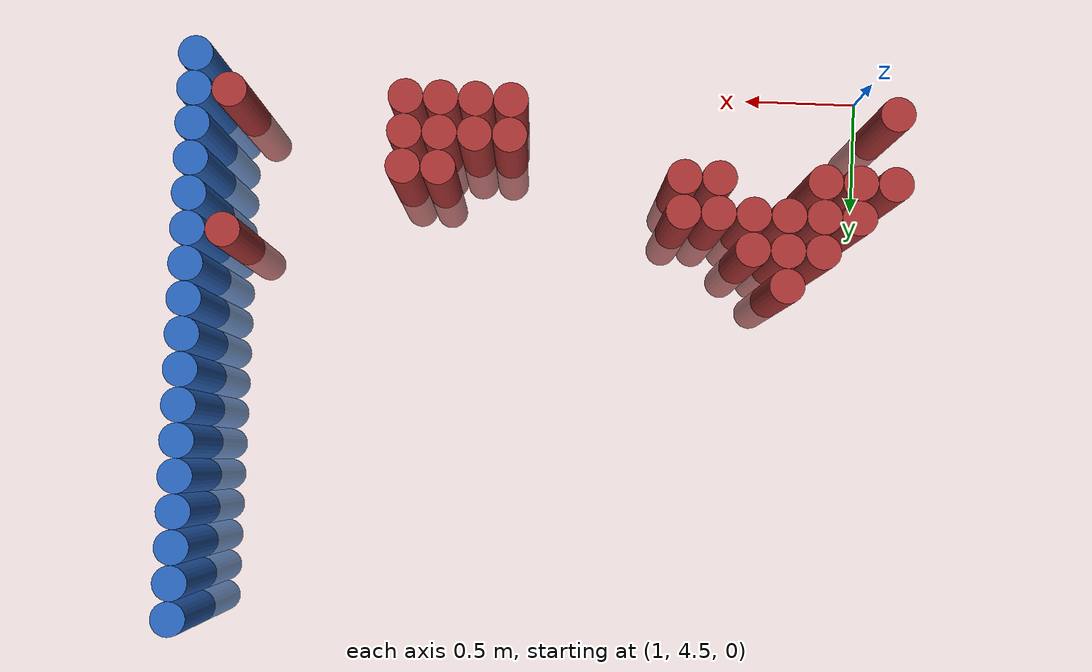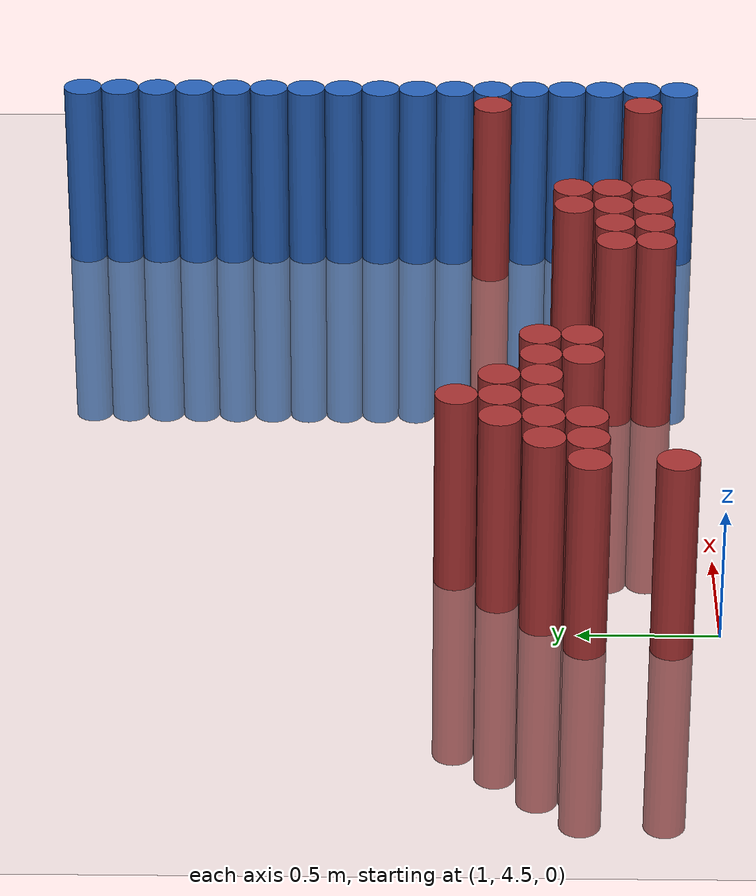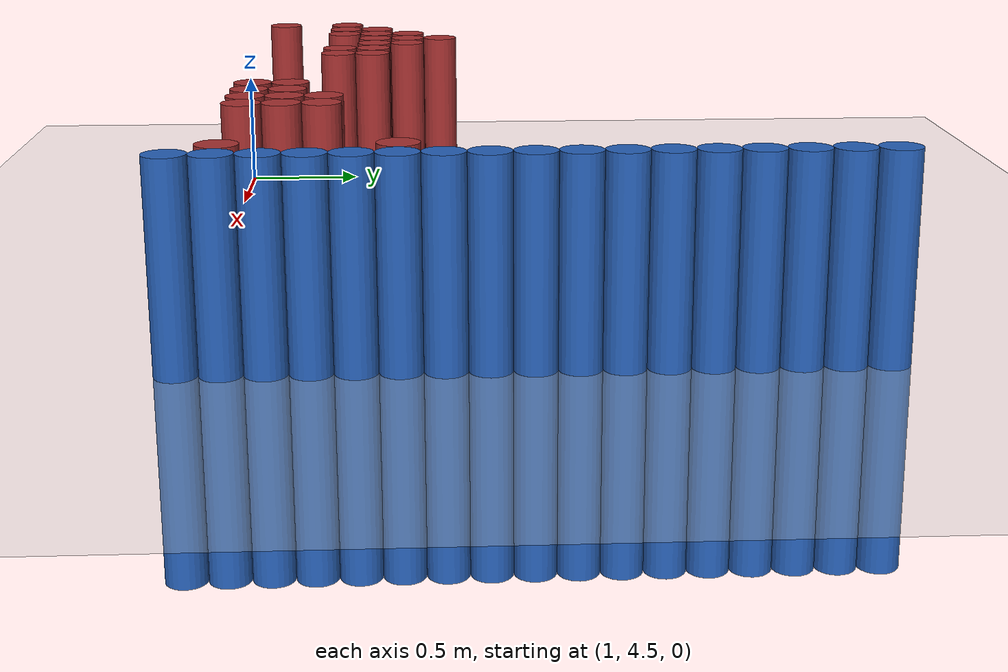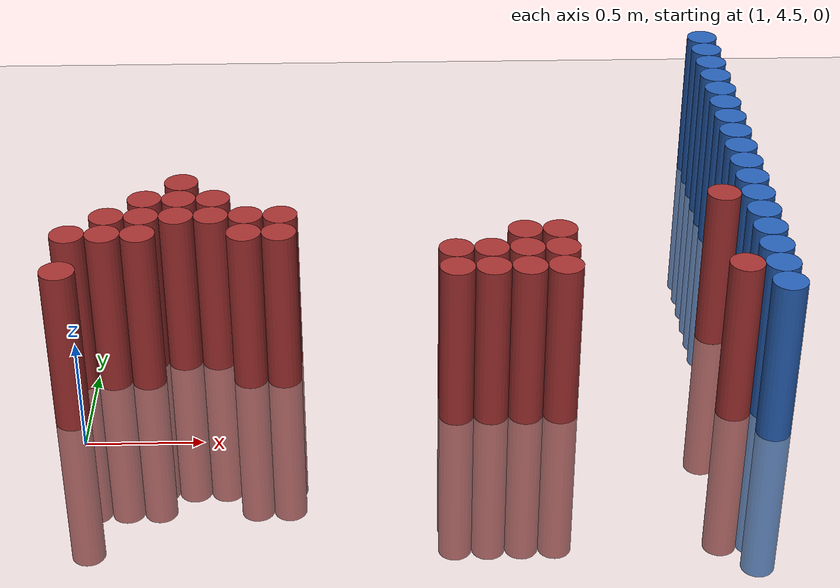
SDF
<sdf version="1.6">
 <world name="default">
  <model name="ground_plane">
   <static>1</static>
   <link name="link">
    <collision name="collision">
     <geometry><plane><normal>0 0 1</normal><size>100 100</size></plane></geometry>
     <surface><friction><ode><mu>100</mu><mu2>50</mu2></ode></friction></surface>
    </collision>
    <visual name="visual">
     <cast_shadows>0</cast_shadows>
     <geometry><plane><normal>0 0 1</normal><size>100 100</size></plane></geometry>
     <material>
      <script><uri>file://media/materials/scripts/gazebo.material</uri><name>Gazebo/Grey</name></script>
     </material>
    </visual>
   </link>
  </model>
  <model name="unit_cylinder_174">
   <static>1</static>
   <pose>3.925000 4.525000 0.000000 0.000000 0.000000 0.000000</pose>
   <link name="link">
    <inertial>
     <mass>1</mass>
     <inertia><ixx>0.145833</ixx><ixy>0</ixy><ixz>0</ixz><iyy>0.145833</iyy><iyz>0</iyz><izz>0.125</izz></inertia>
    </inertial>
    <collision name="collision">
     <geometry><cylinder><radius>0.075000</radius><length>1.5</length></cylinder></geometry>
    </collision>
    <visual name="visual">
     <geometry><cylinder><radius>0.075000</radius><length>1.5</length></cylinder></geometry>
     <material>
      <ambient>0.152000 0.379000 0.720000 1</ambient>
      <diffuse>0.152000 0.379000 0.720000 1</diffuse>
     </material>
     <material>
      <script><name>Gazebo/Grey</name><uri>file://media/materials/scripts/gazebo.material</uri></script>
     </material>
    </visual>
   </link>
  </model>
  <model name="unit_cylinder_176">
   <static>1</static>
   <pose>3.925000 4.675000 0.000000 0.000000 0.000000 0.000000</pose>
   <link name="link">
    <inertial>
     <mass>1</mass>
     <inertia><ixx>0.145833</ixx><ixy>0</ixy><ixz>0</ixz><iyy>0.145833</iyy><iyz>0</iyz><izz>0.125</izz></inertia>
    </inertial>
    <collision name="collision">
     <geometry><cylinder><radius>0.075000</radius><length>1.5</length></cylinder></geometry>
    </collision>
    <visual name="visual">
     <geometry><cylinder><radius>0.075000</radius><length>1.5</length></cylinder></geometry>
     <material>
      <ambient>0.152000 0.379000 0.720000 1</ambient>
      <diffuse>0.152000 0.379000 0.720000 1</diffuse>
     </material>
     <material>
      <script><name>Gazebo/Grey</name><uri>file://media/materials/scripts/gazebo.material</uri></script>
     </material>
    </visual>
   </link>
  </model>
  <model name="unit_cylinder_178">
   <static>1</static>
   <pose>3.925000 4.825000 0.000000 0.000000 0.000000 0.000000</pose>
   <link name="link">
    <inertial>
     <mass>1</mass>
     <inertia><ixx>0.145833</ixx><ixy>0</ixy><ixz>0</ixz><iyy>0.145833</iyy><iyz>0</iyz><izz>0.125</izz></inertia>
    </inertial>
    <collision name="collision">
     <geometry><cylinder><radius>0.075000</radius><length>1.5</length></cylinder></geometry>
    </collision>
    <visual name="visual">
     <geometry><cylinder><radius>0.075000</radius><length>1.5</length></cylinder></geometry>
     <material>
      <ambient>0.152000 0.379000 0.720000 1</ambient>
      <diffuse>0.152000 0.379000 0.720000 1</diffuse>
     </material>
     <material>
      <script><name>Gazebo/Grey</name><uri>file://media/materials/scripts/gazebo.material</uri></script>
     </material>
    </visual>
   </link>
  </model>
  <model name="unit_cylinder_180">
   <static>1</static>
   <pose>3.925000 4.975000 0.000000 0.000000 0.000000 0.000000</pose>
   <link name="link">
    <inertial>
     <mass>1</mass>
     <inertia><ixx>0.145833</ixx><ixy>0</ixy><ixz>0</ixz><iyy>0.145833</iyy><iyz>0</iyz><izz>0.125</izz></inertia>
    </inertial>
    <collision name="collision">
     <geometry><cylinder><radius>0.075000</radius><length>1.5</length></cylinder></geometry>
    </collision>
    <visual name="visual">
     <geometry><cylinder><radius>0.075000</radius><length>1.5</length></cylinder></geometry>
     <material>
      <ambient>0.152000 0.379000 0.720000 1</ambient>
      <diffuse>0.152000 0.379000 0.720000 1</diffuse>
     </material>
     <material>
      <script><name>Gazebo/Grey</name><uri>file://media/materials/scripts/gazebo.material</uri></script>
     </material>
    </visual>
   </link>
  </model>
  <model name="unit_cylinder_182">
   <static>1</static>
   <pose>3.925000 5.125000 0.000000 0.000000 0.000000 0.000000</pose>
   <link name="link">
    <inertial>
     <mass>1</mass>
     <inertia><ixx>0.145833</ixx><ixy>0</ixy><ixz>0</ixz><iyy>0.145833</iyy><iyz>0</iyz><izz>0.125</izz></inertia>
    </inertial>
    <collision name="collision">
     <geometry><cylinder><radius>0.075000</radius><length>1.5</length></cylinder></geometry>
    </collision>
    <visual name="visual">
     <geometry><cylinder><radius>0.075000</radius><length>1.5</length></cylinder></geometry>
     <material>
      <ambient>0.152000 0.379000 0.720000 1</ambient>
      <diffuse>0.152000 0.379000 0.720000 1</diffuse>
     </material>
     <material>
      <script><name>Gazebo/Grey</name><uri>file://media/materials/scripts/gazebo.material</uri></script>
     </material>
    </visual>
   </link>
  </model>
  <model name="unit_cylinder_184">
   <static>1</static>
   <pose>3.925000 5.275000 0.000000 0.000000 0.000000 0.000000</pose>
   <link name="link">
    <inertial>
     <mass>1</mass>
     <inertia><ixx>0.145833</ixx><ixy>0</ixy><ixz>0</ixz><iyy>0.145833</iyy><iyz>0</iyz><izz>0.125</izz></inertia>
    </inertial>
    <collision name="collision">
     <geometry><cylinder><radius>0.075000</radius><length>1.5</length></cylinder></geometry>
    </collision>
    <visual name="visual">
     <geometry><cylinder><radius>0.075000</radius><length>1.5</length></cylinder></geometry>
     <material>
      <ambient>0.152000 0.379000 0.720000 1</ambient>
      <diffuse>0.152000 0.379000 0.720000 1</diffuse>
     </material>
     <material>
      <script><name>Gazebo/Grey</name><uri>file://media/materials/scripts/gazebo.material</uri></script>
     </material>
    </visual>
   </link>
  </model>
  <model name="unit_cylinder_186">
   <static>1</static>
   <pose>3.925000 5.425000 0.000000 0.000000 0.000000 0.000000</pose>
   <link name="link">
    <inertial>
     <mass>1</mass>
     <inertia><ixx>0.145833</ixx><ixy>0</ixy><ixz>0</ixz><iyy>0.145833</iyy><iyz>0</iyz><izz>0.125</izz></inertia>
    </inertial>
    <collision name="collision">
     <geometry><cylinder><radius>0.075000</radius><length>1.5</length></cylinder></geometry>
    </collision>
    <visual name="visual">
     <geometry><cylinder><radius>0.075000</radius><length>1.5</length></cylinder></geometry>
     <material>
      <ambient>0.152000 0.379000 0.720000 1</ambient>
      <diffuse>0.152000 0.379000 0.720000 1</diffuse>
     </material>
     <material>
      <script><name>Gazebo/Grey</name><uri>file://media/materials/scripts/gazebo.material</uri></script>
     </material>
    </visual>
   </link>
  </model>
  <model name="unit_cylinder_188">
   <static>1</static>
   <pose>3.925000 5.575000 0.000000 0.000000 0.000000 0.000000</pose>
   <link name="link">
    <inertial>
     <mass>1</mass>
     <inertia><ixx>0.145833</ixx><ixy>0</ixy><ixz>0</ixz><iyy>0.145833</iyy><iyz>0</iyz><izz>0.125</izz></inertia>
    </inertial>
    <collision name="collision">
     <geometry><cylinder><radius>0.075000</radius><length>1.5</length></cylinder></geometry>
    </collision>
    <visual name="visual">
     <geometry><cylinder><radius>0.075000</radius><length>1.5</length></cylinder></geometry>
     <material>
      <ambient>0.152000 0.379000 0.720000 1</ambient>
      <diffuse>0.152000 0.379000 0.720000 1</diffuse>
     </material>
     <material>
      <script><name>Gazebo/Grey</name><uri>file://media/materials/scripts/gazebo.material</uri></script>
     </material>
    </visual>
   </link>
  </model>
  <model name="unit_cylinder_190">
   <static>1</static>
   <pose>3.925000 5.725000 0.000000 0.000000 0.000000 0.000000</pose>
   <link name="link">
    <inertial>
     <mass>1</mass>
     <inertia><ixx>0.145833</ixx><ixy>0</ixy><ixz>0</ixz><iyy>0.145833</iyy><iyz>0</iyz><izz>0.125</izz></inertia>
    </inertial>
    <collision name="collision">
     <geometry><cylinder><radius>0.075000</radius><length>1.5</length></cylinder></geometry>
    </collision>
    <visual name="visual">
     <geometry><cylinder><radius>0.075000</radius><length>1.5</length></cylinder></geometry>
     <material>
      <ambient>0.152000 0.379000 0.720000 1</ambient>
      <diffuse>0.152000 0.379000 0.720000 1</diffuse>
     </material>
     <material>
      <script><name>Gazebo/Grey</name><uri>file://media/materials/scripts/gazebo.material</uri></script>
     </material>
    </visual>
   </link>
  </model>
  <model name="unit_cylinder_192">
   <static>1</static>
   <pose>3.925000 5.875000 0.000000 0.000000 0.000000 0.000000</pose>
   <link name="link">
    <inertial>
     <mass>1</mass>
     <inertia><ixx>0.145833</ixx><ixy>0</ixy><ixz>0</ixz><iyy>0.145833</iyy><iyz>0</iyz><izz>0.125</izz></inertia>
    </inertial>
    <collision name="collision">
     <geometry><cylinder><radius>0.075000</radius><length>1.5</length></cylinder></geometry>
    </collision>
    <visual name="visual">
     <geometry><cylinder><radius>0.075000</radius><length>1.5</length></cylinder></geometry>
     <material>
      <ambient>0.152000 0.379000 0.720000 1</ambient>
      <diffuse>0.152000 0.379000 0.720000 1</diffuse>
     </material>
     <material>
      <script><name>Gazebo/Grey</name><uri>file://media/materials/scripts/gazebo.material</uri></script>
     </material>
    </visual>
   </link>
  </model>
  <model name="unit_cylinder_194">
   <static>1</static>
   <pose>3.925000 6.025000 0.000000 0.000000 0.000000 0.000000</pose>
   <link name="link">
    <inertial>
     <mass>1</mass>
     <inertia><ixx>0.145833</ixx><ixy>0</ixy><ixz>0</ixz><iyy>0.145833</iyy><iyz>0</iyz><izz>0.125</izz></inertia>
    </inertial>
    <collision name="collision">
     <geometry><cylinder><radius>0.075000</radius><length>1.5</length></cylinder></geometry>
    </collision>
    <visual name="visual">
     <geometry><cylinder><radius>0.075000</radius><length>1.5</length></cylinder></geometry>
     <material>
      <ambient>0.152000 0.379000 0.720000 1</ambient>
      <diffuse>0.152000 0.379000 0.720000 1</diffuse>
     </material>
     <material>
      <script><name>Gazebo/Grey</name><uri>file://media/materials/scripts/gazebo.material</uri></script>
     </material>
    </visual>
   </link>
  </model>
  <model name="unit_cylinder_196">
   <static>1</static>
   <pose>3.925000 6.175000 0.000000 0.000000 0.000000 0.000000</pose>
   <link name="link">
    <inertial>
     <mass>1</mass>
     <inertia><ixx>0.145833</ixx><ixy>0</ixy><ixz>0</ixz><iyy>0.145833</iyy><iyz>0</iyz><izz>0.125</izz></inertia>
    </inertial>
    <collision name="collision">
     <geometry><cylinder><radius>0.075000</radius><length>1.5</length></cylinder></geometry>
    </collision>
    <visual name="visual">
     <geometry><cylinder><radius>0.075000</radius><length>1.5</length></cylinder></geometry>
     <material>
      <ambient>0.152000 0.379000 0.720000 1</ambient>
      <diffuse>0.152000 0.379000 0.720000 1</diffuse>
     </material>
     <material>
      <script><name>Gazebo/Grey</name><uri>file://media/materials/scripts/gazebo.material</uri></script>
     </material>
    </visual>
   </link>
  </model>
  <model name="unit_cylinder_198">
   <static>1</static>
   <pose>3.925000 6.325000 0.000000 0.000000 0.000000 0.000000</pose>
   <link name="link">
    <inertial>
     <mass>1</mass>
     <inertia><ixx>0.145833</ixx><ixy>0</ixy><ixz>0</ixz><iyy>0.145833</iyy><iyz>0</iyz><izz>0.125</izz></inertia>
    </inertial>
    <collision name="collision">
     <geometry><cylinder><radius>0.075000</radius><length>1.5</length></cylinder></geometry>
    </collision>
    <visual name="visual">
     <geometry><cylinder><radius>0.075000</radius><length>1.5</length></cylinder></geometry>
     <material>
      <ambient>0.152000 0.379000 0.720000 1</ambient>
      <diffuse>0.152000 0.379000 0.720000 1</diffuse>
     </material>
     <material>
      <script><name>Gazebo/Grey</name><uri>file://media/materials/scripts/gazebo.material</uri></script>
     </material>
    </visual>
   </link>
  </model>
  <model name="unit_cylinder_200">
   <static>1</static>
   <pose>3.925000 6.475000 0.000000 0.000000 0.000000 0.000000</pose>
   <link name="link">
    <inertial>
     <mass>1</mass>
     <inertia><ixx>0.145833</ixx><ixy>0</ixy><ixz>0</ixz><iyy>0.145833</iyy><iyz>0</iyz><izz>0.125</izz></inertia>
    </inertial>
    <collision name="collision">
     <geometry><cylinder><radius>0.075000</radius><length>1.5</length></cylinder></geometry>
    </collision>
    <visual name="visual">
     <geometry><cylinder><radius>0.075000</radius><length>1.5</length></cylinder></geometry>
     <material>
      <ambient>0.152000 0.379000 0.720000 1</ambient>
      <diffuse>0.152000 0.379000 0.720000 1</diffuse>
     </material>
     <material>
      <script><name>Gazebo/Grey</name><uri>file://media/materials/scripts/gazebo.material</uri></script>
     </material>
    </visual>
   </link>
  </model>
  <model name="unit_cylinder_202">
   <static>1</static>
   <pose>3.925000 6.625000 0.000000 0.000000 0.000000 0.000000</pose>
   <link name="link">
    <inertial>
     <mass>1</mass>
     <inertia><ixx>0.145833</ixx><ixy>0</ixy><ixz>0</ixz><iyy>0.145833</iyy><iyz>0</iyz><izz>0.125</izz></inertia>
    </inertial>
    <collision name="collision">
     <geometry><cylinder><radius>0.075000</radius><length>1.5</length></cylinder></geometry>
    </collision>
    <visual name="visual">
     <geometry><cylinder><radius>0.075000</radius><length>1.5</length></cylinder></geometry>
     <material>
      <ambient>0.152000 0.379000 0.720000 1</ambient>
      <diffuse>0.152000 0.379000 0.720000 1</diffuse>
     </material>
     <material>
      <script><name>Gazebo/Grey</name><uri>file://media/materials/scripts/gazebo.material</uri></script>
     </material>
    </visual>
   </link>
  </model>
  <model name="unit_cylinder_204">
   <static>1</static>
   <pose>3.925000 6.775000 0.000000 0.000000 0.000000 0.000000</pose>
   <link name="link">
    <inertial>
     <mass>1</mass>
     <inertia><ixx>0.145833</ixx><ixy>0</ixy><ixz>0</ixz><iyy>0.145833</iyy><iyz>0</iyz><izz>0.125</izz></inertia>
    </inertial>
    <collision name="collision">
     <geometry><cylinder><radius>0.075000</radius><length>1.5</length></cylinder></geometry>
    </collision>
    <visual name="visual">
     <geometry><cylinder><radius>0.075000</radius><length>1.5</length></cylinder></geometry>
     <material>
      <ambient>0.152000 0.379000 0.720000 1</ambient>
      <diffuse>0.152000 0.379000 0.720000 1</diffuse>
     </material>
     <material>
      <script><name>Gazebo/Grey</name><uri>file://media/materials/scripts/gazebo.material</uri></script>
     </material>
    </visual>
   </link>
  </model>
  <model name="unit_cylinder_206">
   <static>1</static>
   <pose>3.925000 6.925000 0.000000 0.000000 0.000000 0.000000</pose>
   <link name="link">
    <inertial>
     <mass>1</mass>
     <inertia><ixx>0.145833</ixx><ixy>0</ixy><ixz>0</ixz><iyy>0.145833</iyy><iyz>0</iyz><izz>0.125</izz></inertia>
    </inertial>
    <collision name="collision">
     <geometry><cylinder><radius>0.075000</radius><length>1.5</length></cylinder></geometry>
    </collision>
    <visual name="visual">
     <geometry><cylinder><radius>0.075000</radius><length>1.5</length></cylinder></geometry>
     <material>
      <ambient>0.152000 0.379000 0.720000 1</ambient>
      <diffuse>0.152000 0.379000 0.720000 1</diffuse>
     </material>
     <material>
      <script><name>Gazebo/Grey</name><uri>file://media/materials/scripts/gazebo.material</uri></script>
     </material>
    </visual>
   </link>
  </model>
  <model name="unit_cylinder_415">
   <static>1</static>
   <pose>0.925000 4.675000 0.000000 0.000000 0.000000 0.000000</pose>
   <link name="link">
    <inertial>
     <mass>1</mass>
     <inertia><ixx>0.145833</ixx><ixy>0</ixy><ixz>0</ixz><iyy>0.145833</iyy><iyz>0</iyz><izz>0.125</izz></inertia>
    </inertial>
    <collision name="collision">
     <geometry><cylinder><radius>0.075000</radius><length>1.5</length></cylinder></geometry>
    </collision>
    <visual name="visual">
     <geometry><cylinder><radius>0.075000</radius><length>1.5</length></cylinder></geometry>
     <material>
      <ambient>0.648000 0.192000 0.192000 1</ambient>
      <diffuse>0.648000 0.192000 0.192000 1</diffuse>
     </material>
     <material>
      <script><name>Gazebo/Grey</name><uri>file://media/materials/scripts/gazebo.material</uri></script>
     </material>
    </visual>
   </link>
  </model>
  <model name="unit_cylinder_416">
   <static>1</static>
   <pose>0.925000 4.975000 0.000000 0.000000 0.000000 0.000000</pose>
   <link name="link">
    <inertial>
     <mass>1</mass>
     <inertia><ixx>0.145833</ixx><ixy>0</ixy><ixz>0</ixz><iyy>0.145833</iyy><iyz>0</iyz><izz>0.125</izz></inertia>
    </inertial>
    <collision name="collision">
     <geometry><cylinder><radius>0.075000</radius><length>1.5</length></cylinder></geometry>
    </collision>
    <visual name="visual">
     <geometry><cylinder><radius>0.075000</radius><length>1.5</length></cylinder></geometry>
     <material>
      <ambient>0.648000 0.192000 0.192000 1</ambient>
      <diffuse>0.648000 0.192000 0.192000 1</diffuse>
     </material>
     <material>
      <script><name>Gazebo/Grey</name><uri>file://media/materials/scripts/gazebo.material</uri></script>
     </material>
    </visual>
   </link>
  </model>
  <model name="unit_cylinder_425">
   <static>1</static>
   <pose>1.075000 4.975000 0.000000 0.000000 0.000000 0.000000</pose>
   <link name="link">
    <inertial>
     <mass>1</mass>
     <inertia><ixx>0.145833</ixx><ixy>0</ixy><ixz>0</ixz><iyy>0.145833</iyy><iyz>0</iyz><izz>0.125</izz></inertia>
    </inertial>
    <collision name="collision">
     <geometry><cylinder><radius>0.075000</radius><length>1.5</length></cylinder></geometry>
    </collision>
    <visual name="visual">
     <geometry><cylinder><radius>0.075000</radius><length>1.5</length></cylinder></geometry>
     <material>
      <ambient>0.648000 0.192000 0.192000 1</ambient>
      <diffuse>0.648000 0.192000 0.192000 1</diffuse>
     </material>
     <material>
      <script><name>Gazebo/Grey</name><uri>file://media/materials/scripts/gazebo.material</uri></script>
     </material>
    </visual>
   </link>
  </model>
  <model name="unit_cylinder_426">
   <static>1</static>
   <pose>1.075000 5.125000 0.000000 0.000000 0.000000 0.000000</pose>
   <link name="link">
    <inertial>
     <mass>1</mass>
     <inertia><ixx>0.145833</ixx><ixy>0</ixy><ixz>0</ixz><iyy>0.145833</iyy><iyz>0</iyz><izz>0.125</izz></inertia>
    </inertial>
    <collision name="collision">
     <geometry><cylinder><radius>0.075000</radius><length>1.5</length></cylinder></geometry>
    </collision>
    <visual name="visual">
     <geometry><cylinder><radius>0.075000</radius><length>1.5</length></cylinder></geometry>
     <material>
      <ambient>0.648000 0.192000 0.192000 1</ambient>
      <diffuse>0.648000 0.192000 0.192000 1</diffuse>
     </material>
     <material>
      <script><name>Gazebo/Grey</name><uri>file://media/materials/scripts/gazebo.material</uri></script>
     </material>
    </visual>
   </link>
  </model>
  <model name="unit_cylinder_434">
   <static>1</static>
   <pose>1.225000 4.975000 0.000000 0.000000 0.000000 0.000000</pose>
   <link name="link">
    <inertial>
     <mass>1</mass>
     <inertia><ixx>0.145833</ixx><ixy>0</ixy><ixz>0</ixz><iyy>0.145833</iyy><iyz>0</iyz><izz>0.125</izz></inertia>
    </inertial>
    <collision name="collision">
     <geometry><cylinder><radius>0.075000</radius><length>1.5</length></cylinder></geometry>
    </collision>
    <visual name="visual">
     <geometry><cylinder><radius>0.075000</radius><length>1.5</length></cylinder></geometry>
     <material>
      <ambient>0.648000 0.192000 0.192000 1</ambient>
      <diffuse>0.648000 0.192000 0.192000 1</diffuse>
     </material>
     <material>
      <script><name>Gazebo/Grey</name><uri>file://media/materials/scripts/gazebo.material</uri></script>
     </material>
    </visual>
   </link>
  </model>
  <model name="unit_cylinder_435">
   <static>1</static>
   <pose>1.225000 5.125000 0.000000 0.000000 0.000000 0.000000</pose>
   <link name="link">
    <inertial>
     <mass>1</mass>
     <inertia><ixx>0.145833</ixx><ixy>0</ixy><ixz>0</ixz><iyy>0.145833</iyy><iyz>0</iyz><izz>0.125</izz></inertia>
    </inertial>
    <collision name="collision">
     <geometry><cylinder><radius>0.075000</radius><length>1.5</length></cylinder></geometry>
    </collision>
    <visual name="visual">
     <geometry><cylinder><radius>0.075000</radius><length>1.5</length></cylinder></geometry>
     <material>
      <ambient>0.648000 0.192000 0.192000 1</ambient>
      <diffuse>0.648000 0.192000 0.192000 1</diffuse>
     </material>
     <material>
      <script><name>Gazebo/Grey</name><uri>file://media/materials/scripts/gazebo.material</uri></script>
     </material>
    </visual>
   </link>
  </model>
  <model name="unit_cylinder_436">
   <static>1</static>
   <pose>1.225000 5.275000 0.000000 0.000000 0.000000 0.000000</pose>
   <link name="link">
    <inertial>
     <mass>1</mass>
     <inertia><ixx>0.145833</ixx><ixy>0</ixy><ixz>0</ixz><iyy>0.145833</iyy><iyz>0</iyz><izz>0.125</izz></inertia>
    </inertial>
    <collision name="collision">
     <geometry><cylinder><radius>0.075000</radius><length>1.5</length></cylinder></geometry>
    </collision>
    <visual name="visual">
     <geometry><cylinder><radius>0.075000</radius><length>1.5</length></cylinder></geometry>
     <material>
      <ambient>0.648000 0.192000 0.192000 1</ambient>
      <diffuse>0.648000 0.192000 0.192000 1</diffuse>
     </material>
     <material>
      <script><name>Gazebo/Grey</name><uri>file://media/materials/scripts/gazebo.material</uri></script>
     </material>
    </visual>
   </link>
  </model>
  <model name="unit_cylinder_444">
   <static>1</static>
   <pose>1.375000 5.125000 0.000000 0.000000 0.000000 0.000000</pose>
   <link name="link">
    <inertial>
     <mass>1</mass>
     <inertia><ixx>0.145833</ixx><ixy>0</ixy><ixz>0</ixz><iyy>0.145833</iyy><iyz>0</iyz><izz>0.125</izz></inertia>
    </inertial>
    <collision name="collision">
     <geometry><cylinder><radius>0.075000</radius><length>1.5</length></cylinder></geometry>
    </collision>
    <visual name="visual">
     <geometry><cylinder><radius>0.075000</radius><length>1.5</length></cylinder></geometry>
     <material>
      <ambient>0.648000 0.192000 0.192000 1</ambient>
      <diffuse>0.648000 0.192000 0.192000 1</diffuse>
     </material>
     <material>
      <script><name>Gazebo/Grey</name><uri>file://media/materials/scripts/gazebo.material</uri></script>
     </material>
    </visual>
   </link>
  </model>
  <model name="unit_cylinder_445">
   <static>1</static>
   <pose>1.375000 5.275000 0.000000 0.000000 0.000000 0.000000</pose>
   <link name="link">
    <inertial>
     <mass>1</mass>
     <inertia><ixx>0.145833</ixx><ixy>0</ixy><ixz>0</ixz><iyy>0.145833</iyy><iyz>0</iyz><izz>0.125</izz></inertia>
    </inertial>
    <collision name="collision">
     <geometry><cylinder><radius>0.075000</radius><length>1.5</length></cylinder></geometry>
    </collision>
    <visual name="visual">
     <geometry><cylinder><radius>0.075000</radius><length>1.5</length></cylinder></geometry>
     <material>
      <ambient>0.648000 0.192000 0.192000 1</ambient>
      <diffuse>0.648000 0.192000 0.192000 1</diffuse>
     </material>
     <material>
      <script><name>Gazebo/Grey</name><uri>file://media/materials/scripts/gazebo.material</uri></script>
     </material>
    </visual>
   </link>
  </model>
  <model name="unit_cylinder_446">
   <static>1</static>
   <pose>1.375000 5.425000 0.000000 0.000000 0.000000 0.000000</pose>
   <link name="link">
    <inertial>
     <mass>1</mass>
     <inertia><ixx>0.145833</ixx><ixy>0</ixy><ixz>0</ixz><iyy>0.145833</iyy><iyz>0</iyz><izz>0.125</izz></inertia>
    </inertial>
    <collision name="collision">
     <geometry><cylinder><radius>0.075000</radius><length>1.5</length></cylinder></geometry>
    </collision>
    <visual name="visual">
     <geometry><cylinder><radius>0.075000</radius><length>1.5</length></cylinder></geometry>
     <material>
      <ambient>0.648000 0.192000 0.192000 1</ambient>
      <diffuse>0.648000 0.192000 0.192000 1</diffuse>
     </material>
     <material>
      <script><name>Gazebo/Grey</name><uri>file://media/materials/scripts/gazebo.material</uri></script>
     </material>
    </visual>
   </link>
  </model>
  <model name="unit_cylinder_455">
   <static>1</static>
   <pose>1.525000 5.125000 0.000000 0.000000 0.000000 0.000000</pose>
   <link name="link">
    <inertial>
     <mass>1</mass>
     <inertia><ixx>0.145833</ixx><ixy>0</ixy><ixz>0</ixz><iyy>0.145833</iyy><iyz>0</iyz><izz>0.125</izz></inertia>
    </inertial>
    <collision name="collision">
     <geometry><cylinder><radius>0.075000</radius><length>1.5</length></cylinder></geometry>
    </collision>
    <visual name="visual">
     <geometry><cylinder><radius>0.075000</radius><length>1.5</length></cylinder></geometry>
     <material>
      <ambient>0.648000 0.192000 0.192000 1</ambient>
      <diffuse>0.648000 0.192000 0.192000 1</diffuse>
     </material>
     <material>
      <script><name>Gazebo/Grey</name><uri>file://media/materials/scripts/gazebo.material</uri></script>
     </material>
    </visual>
   </link>
  </model>
  <model name="unit_cylinder_456">
   <static>1</static>
   <pose>1.525000 5.275000 0.000000 0.000000 0.000000 0.000000</pose>
   <link name="link">
    <inertial>
     <mass>1</mass>
     <inertia><ixx>0.145833</ixx><ixy>0</ixy><ixz>0</ixz><iyy>0.145833</iyy><iyz>0</iyz><izz>0.125</izz></inertia>
    </inertial>
    <collision name="collision">
     <geometry><cylinder><radius>0.075000</radius><length>1.5</length></cylinder></geometry>
    </collision>
    <visual name="visual">
     <geometry><cylinder><radius>0.075000</radius><length>1.5</length></cylinder></geometry>
     <material>
      <ambient>0.648000 0.192000 0.192000 1</ambient>
      <diffuse>0.648000 0.192000 0.192000 1</diffuse>
     </material>
     <material>
      <script><name>Gazebo/Grey</name><uri>file://media/materials/scripts/gazebo.material</uri></script>
     </material>
    </visual>
   </link>
  </model>
  <model name="unit_cylinder_464">
   <static>1</static>
   <pose>1.675000 4.975000 0.000000 0.000000 0.000000 0.000000</pose>
   <link name="link">
    <inertial>
     <mass>1</mass>
     <inertia><ixx>0.145833</ixx><ixy>0</ixy><ixz>0</ixz><iyy>0.145833</iyy><iyz>0</iyz><izz>0.125</izz></inertia>
    </inertial>
    <collision name="collision">
     <geometry><cylinder><radius>0.075000</radius><length>1.5</length></cylinder></geometry>
    </collision>
    <visual name="visual">
     <geometry><cylinder><radius>0.075000</radius><length>1.5</length></cylinder></geometry>
     <material>
      <ambient>0.648000 0.192000 0.192000 1</ambient>
      <diffuse>0.648000 0.192000 0.192000 1</diffuse>
     </material>
     <material>
      <script><name>Gazebo/Grey</name><uri>file://media/materials/scripts/gazebo.material</uri></script>
     </material>
    </visual>
   </link>
  </model>
  <model name="unit_cylinder_465">
   <static>1</static>
   <pose>1.675000 5.125000 0.000000 0.000000 0.000000 0.000000</pose>
   <link name="link">
    <inertial>
     <mass>1</mass>
     <inertia><ixx>0.145833</ixx><ixy>0</ixy><ixz>0</ixz><iyy>0.145833</iyy><iyz>0</iyz><izz>0.125</izz></inertia>
    </inertial>
    <collision name="collision">
     <geometry><cylinder><radius>0.075000</radius><length>1.5</length></cylinder></geometry>
    </collision>
    <visual name="visual">
     <geometry><cylinder><radius>0.075000</radius><length>1.5</length></cylinder></geometry>
     <material>
      <ambient>0.648000 0.192000 0.192000 1</ambient>
      <diffuse>0.648000 0.192000 0.192000 1</diffuse>
     </material>
     <material>
      <script><name>Gazebo/Grey</name><uri>file://media/materials/scripts/gazebo.material</uri></script>
     </material>
    </visual>
   </link>
  </model>
  <model name="unit_cylinder_469">
   <static>1</static>
   <pose>1.825000 4.975000 0.000000 0.000000 0.000000 0.000000</pose>
   <link name="link">
    <inertial>
     <mass>1</mass>
     <inertia><ixx>0.145833</ixx><ixy>0</ixy><ixz>0</ixz><iyy>0.145833</iyy><iyz>0</iyz><izz>0.125</izz></inertia>
    </inertial>
    <collision name="collision">
     <geometry><cylinder><radius>0.075000</radius><length>1.5</length></cylinder></geometry>
    </collision>
    <visual name="visual">
     <geometry><cylinder><radius>0.075000</radius><length>1.5</length></cylinder></geometry>
     <material>
      <ambient>0.648000 0.192000 0.192000 1</ambient>
      <diffuse>0.648000 0.192000 0.192000 1</diffuse>
     </material>
     <material>
      <script><name>Gazebo/Grey</name><uri>file://media/materials/scripts/gazebo.material</uri></script>
     </material>
    </visual>
   </link>
  </model>
  <model name="unit_cylinder_470">
   <static>1</static>
   <pose>1.825000 5.125000 0.000000 0.000000 0.000000 0.000000</pose>
   <link name="link">
    <inertial>
     <mass>1</mass>
     <inertia><ixx>0.145833</ixx><ixy>0</ixy><ixz>0</ixz><iyy>0.145833</iyy><iyz>0</iyz><izz>0.125</izz></inertia>
    </inertial>
    <collision name="collision">
     <geometry><cylinder><radius>0.075000</radius><length>1.5</length></cylinder></geometry>
    </collision>
    <visual name="visual">
     <geometry><cylinder><radius>0.075000</radius><length>1.5</length></cylinder></geometry>
     <material>
      <ambient>0.648000 0.192000 0.192000 1</ambient>
      <diffuse>0.648000 0.192000 0.192000 1</diffuse>
     </material>
     <material>
      <script><name>Gazebo/Grey</name><uri>file://media/materials/scripts/gazebo.material</uri></script>
     </material>
    </visual>
   </link>
  </model>
  <model name="unit_cylinder_500">
   <static>1</static>
   <pose>2.575000 4.675000 0.000000 0.000000 0.000000 0.000000</pose>
   <link name="link">
    <inertial>
     <mass>1</mass>
     <inertia><ixx>0.145833</ixx><ixy>0</ixy><ixz>0</ixz><iyy>0.145833</iyy><iyz>0</iyz><izz>0.125</izz></inertia>
    </inertial>
    <collision name="collision">
     <geometry><cylinder><radius>0.075000</radius><length>1.5</length></cylinder></geometry>
    </collision>
    <visual name="visual">
     <geometry><cylinder><radius>0.075000</radius><length>1.5</length></cylinder></geometry>
     <material>
      <ambient>0.648000 0.192000 0.192000 1</ambient>
      <diffuse>0.648000 0.192000 0.192000 1</diffuse>
     </material>
     <material>
      <script><name>Gazebo/Grey</name><uri>file://media/materials/scripts/gazebo.material</uri></script>
     </material>
    </visual>
   </link>
  </model>
  <model name="unit_cylinder_501">
   <static>1</static>
   <pose>2.575000 4.825000 0.000000 0.000000 0.000000 0.000000</pose>
   <link name="link">
    <inertial>
     <mass>1</mass>
     <inertia><ixx>0.145833</ixx><ixy>0</ixy><ixz>0</ixz><iyy>0.145833</iyy><iyz>0</iyz><izz>0.125</izz></inertia>
    </inertial>
    <collision name="collision">
     <geometry><cylinder><radius>0.075000</radius><length>1.5</length></cylinder></geometry>
    </collision>
    <visual name="visual">
     <geometry><cylinder><radius>0.075000</radius><length>1.5</length></cylinder></geometry>
     <material>
      <ambient>0.648000 0.192000 0.192000 1</ambient>
      <diffuse>0.648000 0.192000 0.192000 1</diffuse>
     </material>
     <material>
      <script><name>Gazebo/Grey</name><uri>file://media/materials/scripts/gazebo.material</uri></script>
     </material>
    </visual>
   </link>
  </model>
  <model name="unit_cylinder_506">
   <static>1</static>
   <pose>2.725000 4.675000 0.000000 0.000000 0.000000 0.000000</pose>
   <link name="link">
    <inertial>
     <mass>1</mass>
     <inertia><ixx>0.145833</ixx><ixy>0</ixy><ixz>0</ixz><iyy>0.145833</iyy><iyz>0</iyz><izz>0.125</izz></inertia>
    </inertial>
    <collision name="collision">
     <geometry><cylinder><radius>0.075000</radius><length>1.5</length></cylinder></geometry>
    </collision>
    <visual name="visual">
     <geometry><cylinder><radius>0.075000</radius><length>1.5</length></cylinder></geometry>
     <material>
      <ambient>0.648000 0.192000 0.192000 1</ambient>
      <diffuse>0.648000 0.192000 0.192000 1</diffuse>
     </material>
     <material>
      <script><name>Gazebo/Grey</name><uri>file://media/materials/scripts/gazebo.material</uri></script>
     </material>
    </visual>
   </link>
  </model>
  <model name="unit_cylinder_507">
   <static>1</static>
   <pose>2.725000 4.825000 0.000000 0.000000 0.000000 0.000000</pose>
   <link name="link">
    <inertial>
     <mass>1</mass>
     <inertia><ixx>0.145833</ixx><ixy>0</ixy><ixz>0</ixz><iyy>0.145833</iyy><iyz>0</iyz><izz>0.125</izz></inertia>
    </inertial>
    <collision name="collision">
     <geometry><cylinder><radius>0.075000</radius><length>1.5</length></cylinder></geometry>
    </collision>
    <visual name="visual">
     <geometry><cylinder><radius>0.075000</radius><length>1.5</length></cylinder></geometry>
     <material>
      <ambient>0.648000 0.192000 0.192000 1</ambient>
      <diffuse>0.648000 0.192000 0.192000 1</diffuse>
     </material>
     <material>
      <script><name>Gazebo/Grey</name><uri>file://media/materials/scripts/gazebo.material</uri></script>
     </material>
    </visual>
   </link>
  </model>
  <model name="unit_cylinder_515">
   <static>1</static>
   <pose>2.875000 4.675000 0.000000 0.000000 0.000000 0.000000</pose>
   <link name="link">
    <inertial>
     <mass>1</mass>
     <inertia><ixx>0.145833</ixx><ixy>0</ixy><ixz>0</ixz><iyy>0.145833</iyy><iyz>0</iyz><izz>0.125</izz></inertia>
    </inertial>
    <collision name="collision">
     <geometry><cylinder><radius>0.075000</radius><length>1.5</length></cylinder></geometry>
    </collision>
    <visual name="visual">
     <geometry><cylinder><radius>0.075000</radius><length>1.5</length></cylinder></geometry>
     <material>
      <ambient>0.648000 0.192000 0.192000 1</ambient>
      <diffuse>0.648000 0.192000 0.192000 1</diffuse>
     </material>
     <material>
      <script><name>Gazebo/Grey</name><uri>file://media/materials/scripts/gazebo.material</uri></script>
     </material>
    </visual>
   </link>
  </model>
  <model name="unit_cylinder_516">
   <static>1</static>
   <pose>2.875000 4.825000 0.000000 0.000000 0.000000 0.000000</pose>
   <link name="link">
    <inertial>
     <mass>1</mass>
     <inertia><ixx>0.145833</ixx><ixy>0</ixy><ixz>0</ixz><iyy>0.145833</iyy><iyz>0</iyz><izz>0.125</izz></inertia>
    </inertial>
    <collision name="collision">
     <geometry><cylinder><radius>0.075000</radius><length>1.5</length></cylinder></geometry>
    </collision>
    <visual name="visual">
     <geometry><cylinder><radius>0.075000</radius><length>1.5</length></cylinder></geometry>
     <material>
      <ambient>0.648000 0.192000 0.192000 1</ambient>
      <diffuse>0.648000 0.192000 0.192000 1</diffuse>
     </material>
     <material>
      <script><name>Gazebo/Grey</name><uri>file://media/materials/scripts/gazebo.material</uri></script>
     </material>
    </visual>
   </link>
  </model>
  <model name="unit_cylinder_517">
   <static>1</static>
   <pose>2.875000 4.975000 0.000000 0.000000 0.000000 0.000000</pose>
   <link name="link">
    <inertial>
     <mass>1</mass>
     <inertia><ixx>0.145833</ixx><ixy>0</ixy><ixz>0</ixz><iyy>0.145833</iyy><iyz>0</iyz><izz>0.125</izz></inertia>
    </inertial>
    <collision name="collision">
     <geometry><cylinder><radius>0.075000</radius><length>1.5</length></cylinder></geometry>
    </collision>
    <visual name="visual">
     <geometry><cylinder><radius>0.075000</radius><length>1.5</length></cylinder></geometry>
     <material>
      <ambient>0.648000 0.192000 0.192000 1</ambient>
      <diffuse>0.648000 0.192000 0.192000 1</diffuse>
     </material>
     <material>
      <script><name>Gazebo/Grey</name><uri>file://media/materials/scripts/gazebo.material</uri></script>
     </material>
    </visual>
   </link>
  </model>
  <model name="unit_cylinder_526">
   <static>1</static>
   <pose>3.025000 4.675000 0.000000 0.000000 0.000000 0.000000</pose>
   <link name="link">
    <inertial>
     <mass>1</mass>
     <inertia><ixx>0.145833</ixx><ixy>0</ixy><ixz>0</ixz><iyy>0.145833</iyy><iyz>0</iyz><izz>0.125</izz></inertia>
    </inertial>
    <collision name="collision">
     <geometry><cylinder><radius>0.075000</radius><length>1.5</length></cylinder></geometry>
    </collision>
    <visual name="visual">
     <geometry><cylinder><radius>0.075000</radius><length>1.5</length></cylinder></geometry>
     <material>
      <ambient>0.648000 0.192000 0.192000 1</ambient>
      <diffuse>0.648000 0.192000 0.192000 1</diffuse>
     </material>
     <material>
      <script><name>Gazebo/Grey</name><uri>file://media/materials/scripts/gazebo.material</uri></script>
     </material>
    </visual>
   </link>
  </model>
  <model name="unit_cylinder_527">
   <static>1</static>
   <pose>3.025000 4.825000 0.000000 0.000000 0.000000 0.000000</pose>
   <link name="link">
    <inertial>
     <mass>1</mass>
     <inertia><ixx>0.145833</ixx><ixy>0</ixy><ixz>0</ixz><iyy>0.145833</iyy><iyz>0</iyz><izz>0.125</izz></inertia>
    </inertial>
    <collision name="collision">
     <geometry><cylinder><radius>0.075000</radius><length>1.5</length></cylinder></geometry>
    </collision>
    <visual name="visual">
     <geometry><cylinder><radius>0.075000</radius><length>1.5</length></cylinder></geometry>
     <material>
      <ambient>0.648000 0.192000 0.192000 1</ambient>
      <diffuse>0.648000 0.192000 0.192000 1</diffuse>
     </material>
     <material>
      <script><name>Gazebo/Grey</name><uri>file://media/materials/scripts/gazebo.material</uri></script>
     </material>
    </visual>
   </link>
  </model>
  <model name="unit_cylinder_528">
   <static>1</static>
   <pose>3.025000 4.975000 0.000000 0.000000 0.000000 0.000000</pose>
   <link name="link">
    <inertial>
     <mass>1</mass>
     <inertia><ixx>0.145833</ixx><ixy>0</ixy><ixz>0</ixz><iyy>0.145833</iyy><iyz>0</iyz><izz>0.125</izz></inertia>
    </inertial>
    <collision name="collision">
     <geometry><cylinder><radius>0.075000</radius><length>1.5</length></cylinder></geometry>
    </collision>
    <visual name="visual">
     <geometry><cylinder><radius>0.075000</radius><length>1.5</length></cylinder></geometry>
     <material>
      <ambient>0.648000 0.192000 0.192000 1</ambient>
      <diffuse>0.648000 0.192000 0.192000 1</diffuse>
     </material>
     <material>
      <script><name>Gazebo/Grey</name><uri>file://media/materials/scripts/gazebo.material</uri></script>
     </material>
    </visual>
   </link>
  </model>
  <model name="unit_cylinder_570">
   <static>1</static>
   <pose>3.775000 4.675000 0.000000 0.000000 0.000000 0.000000</pose>
   <link name="link">
    <inertial>
     <mass>1</mass>
     <inertia><ixx>0.145833</ixx><ixy>0</ixy><ixz>0</ixz><iyy>0.145833</iyy><iyz>0</iyz><izz>0.125</izz></inertia>
    </inertial>
    <collision name="collision">
     <geometry><cylinder><radius>0.075000</radius><length>1.5</length></cylinder></geometry>
    </collision>
    <visual name="visual">
     <geometry><cylinder><radius>0.075000</radius><length>1.5</length></cylinder></geometry>
     <material>
      <ambient>0.648000 0.192000 0.192000 1</ambient>
      <diffuse>0.648000 0.192000 0.192000 1</diffuse>
     </material>
     <material>
      <script><name>Gazebo/Grey</name><uri>file://media/materials/scripts/gazebo.material</uri></script>
     </material>
    </visual>
   </link>
  </model>
  <model name="unit_cylinder_571">
   <static>1</static>
   <pose>3.775000 5.275000 0.000000 0.000000 0.000000 0.000000</pose>
   <link name="link">
    <inertial>
     <mass>1</mass>
     <inertia><ixx>0.145833</ixx><ixy>0</ixy><ixz>0</ixz><iyy>0.145833</iyy><iyz>0</iyz><izz>0.125</izz></inertia>
    </inertial>
    <collision name="collision">
     <geometry><cylinder><radius>0.075000</radius><length>1.5</length></cylinder></geometry>
    </collision>
    <visual name="visual">
     <geometry><cylinder><radius>0.075000</radius><length>1.5</length></cylinder></geometry>
     <material>
      <ambient>0.648000 0.192000 0.192000 1</ambient>
      <diffuse>0.648000 0.192000 0.192000 1</diffuse>
     </material>
     <material>
      <script><name>Gazebo/Grey</name><uri>file://media/materials/scripts/gazebo.material</uri></script>
     </material>
    </visual>
   </link>
  </model>
  <model name="unit_cylinder_615">
   <static>1</static>
   <pose>3.925000 4.525000 0.000000 0.000000 0.000000 0.000000</pose>
   <link name="link">
    <inertial>
     <mass>1</mass>
     <inertia><ixx>0.145833</ixx><ixy>0</ixy><ixz>0</ixz><iyy>0.145833</iyy><iyz>0</iyz><izz>0.125</izz></inertia>
    </inertial>
    <collision name="collision">
     <geometry><cylinder><radius>0.075000</radius><length>1.5</length></cylinder></geometry>
    </collision>
    <visual name="visual">
     <geometry><cylinder><radius>0.075000</radius><length>1.5</length></cylinder></geometry>
     <material>
      <ambient>0.152000 0.379000 0.720000 1</ambient>
      <diffuse>0.152000 0.379000 0.720000 1</diffuse>
     </material>
     <material>
      <script><name>Gazebo/Grey</name><uri>file://media/materials/scripts/gazebo.material</uri></script>
     </material>
    </visual>
   </link>
  </model>
  <model name="unit_cylinder_616">
   <static>1</static>
   <pose>3.925000 4.675000 0.000000 0.000000 0.000000 0.000000</pose>
   <link name="link">
    <inertial>
     <mass>1</mass>
     <inertia><ixx>0.145833</ixx><ixy>0</ixy><ixz>0</ixz><iyy>0.145833</iyy><iyz>0</iyz><izz>0.125</izz></inertia>
    </inertial>
    <collision name="collision">
     <geometry><cylinder><radius>0.075000</radius><length>1.5</length></cylinder></geometry>
    </collision>
    <visual name="visual">
     <geometry><cylinder><radius>0.075000</radius><length>1.5</length></cylinder></geometry>
     <material>
      <ambient>0.152000 0.379000 0.720000 1</ambient>
      <diffuse>0.152000 0.379000 0.720000 1</diffuse>
     </material>
     <material>
      <script><name>Gazebo/Grey</name><uri>file://media/materials/scripts/gazebo.material</uri></script>
     </material>
    </visual>
   </link>
  </model>
  <model name="unit_cylinder_617">
   <static>1</static>
   <pose>3.925000 4.825000 0.000000 0.000000 0.000000 0.000000</pose>
   <link name="link">
    <inertial>
     <mass>1</mass>
     <inertia><ixx>0.145833</ixx><ixy>0</ixy><ixz>0</ixz><iyy>0.145833</iyy><iyz>0</iyz><izz>0.125</izz></inertia>
    </inertial>
    <collision name="collision">
     <geometry><cylinder><radius>0.075000</radius><length>1.5</length></cylinder></geometry>
    </collision>
    <visual name="visual">
     <geometry><cylinder><radius>0.075000</radius><length>1.5</length></cylinder></geometry>
     <material>
      <ambient>0.152000 0.379000 0.720000 1</ambient>
      <diffuse>0.152000 0.379000 0.720000 1</diffuse>
     </material>
     <material>
      <script><name>Gazebo/Grey</name><uri>file://media/materials/scripts/gazebo.material</uri></script>
     </material>
    </visual>
   </link>
  </model>
  <model name="unit_cylinder_618">
   <static>1</static>
   <pose>3.925000 4.975000 0.000000 0.000000 0.000000 0.000000</pose>
   <link name="link">
    <inertial>
     <mass>1</mass>
     <inertia><ixx>0.145833</ixx><ixy>0</ixy><ixz>0</ixz><iyy>0.145833</iyy><iyz>0</iyz><izz>0.125</izz></inertia>
    </inertial>
    <collision name="collision">
     <geometry><cylinder><radius>0.075000</radius><length>1.5</length></cylinder></geometry>
    </collision>
    <visual name="visual">
     <geometry><cylinder><radius>0.075000</radius><length>1.5</length></cylinder></geometry>
     <material>
      <ambient>0.152000 0.379000 0.720000 1</ambient>
      <diffuse>0.152000 0.379000 0.720000 1</diffuse>
     </material>
     <material>
      <script><name>Gazebo/Grey</name><uri>file://media/materials/scripts/gazebo.material</uri></script>
     </material>
    </visual>
   </link>
  </model>
  <model name="unit_cylinder_619">
   <static>1</static>
   <pose>3.925000 5.125000 0.000000 0.000000 0.000000 0.000000</pose>
   <link name="link">
    <inertial>
     <mass>1</mass>
     <inertia><ixx>0.145833</ixx><ixy>0</ixy><ixz>0</ixz><iyy>0.145833</iyy><iyz>0</iyz><izz>0.125</izz></inertia>
    </inertial>
    <collision name="collision">
     <geometry><cylinder><radius>0.075000</radius><length>1.5</length></cylinder></geometry>
    </collision>
    <visual name="visual">
     <geometry><cylinder><radius>0.075000</radius><length>1.5</length></cylinder></geometry>
     <material>
      <ambient>0.152000 0.379000 0.720000 1</ambient>
      <diffuse>0.152000 0.379000 0.720000 1</diffuse>
     </material>
     <material>
      <script><name>Gazebo/Grey</name><uri>file://media/materials/scripts/gazebo.material</uri></script>
     </material>
    </visual>
   </link>
  </model>
  <model name="unit_cylinder_620">
   <static>1</static>
   <pose>3.925000 5.275000 0.000000 0.000000 0.000000 0.000000</pose>
   <link name="link">
    <inertial>
     <mass>1</mass>
     <inertia><ixx>0.145833</ixx><ixy>0</ixy><ixz>0</ixz><iyy>0.145833</iyy><iyz>0</iyz><izz>0.125</izz></inertia>
    </inertial>
    <collision name="collision">
     <geometry><cylinder><radius>0.075000</radius><length>1.5</length></cylinder></geometry>
    </collision>
    <visual name="visual">
     <geometry><cylinder><radius>0.075000</radius><length>1.5</length></cylinder></geometry>
     <material>
      <ambient>0.152000 0.379000 0.720000 1</ambient>
      <diffuse>0.152000 0.379000 0.720000 1</diffuse>
     </material>
     <material>
      <script><name>Gazebo/Grey</name><uri>file://media/materials/scripts/gazebo.material</uri></script>
     </material>
    </visual>
   </link>
  </model>
  <model name="unit_cylinder_621">
   <static>1</static>
   <pose>3.925000 5.425000 0.000000 0.000000 0.000000 0.000000</pose>
   <link name="link">
    <inertial>
     <mass>1</mass>
     <inertia><ixx>0.145833</ixx><ixy>0</ixy><ixz>0</ixz><iyy>0.145833</iyy><iyz>0</iyz><izz>0.125</izz></inertia>
    </inertial>
    <collision name="collision">
     <geometry><cylinder><radius>0.075000</radius><length>1.5</length></cylinder></geometry>
    </collision>
    <visual name="visual">
     <geometry><cylinder><radius>0.075000</radius><length>1.5</length></cylinder></geometry>
     <material>
      <ambient>0.152000 0.379000 0.720000 1</ambient>
      <diffuse>0.152000 0.379000 0.720000 1</diffuse>
     </material>
     <material>
      <script><name>Gazebo/Grey</name><uri>file://media/materials/scripts/gazebo.material</uri></script>
     </material>
    </visual>
   </link>
  </model>
 </world>
</sdf>
